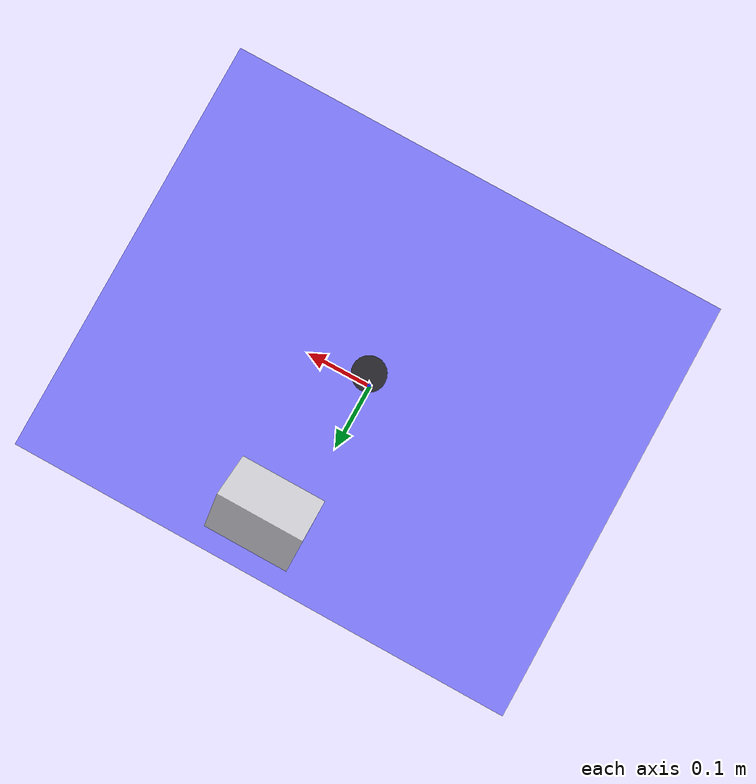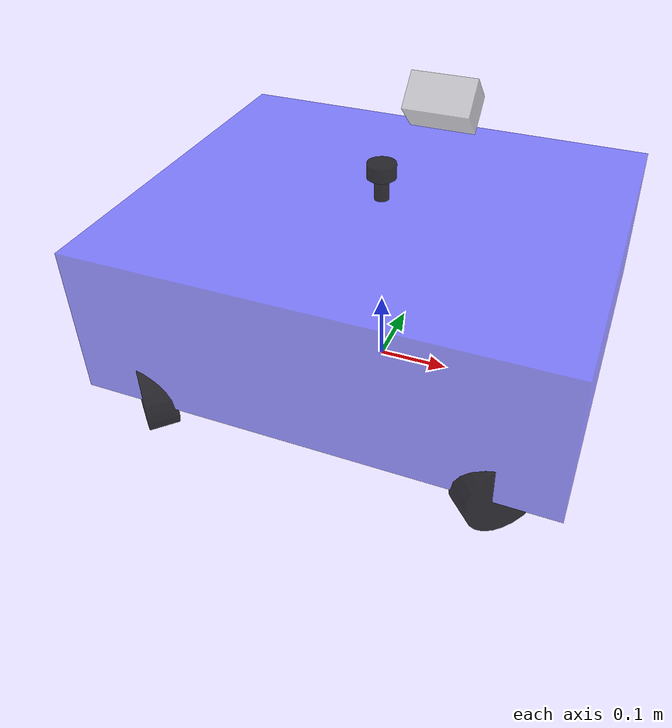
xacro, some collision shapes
<?xml version="1.0"?>
<robot xmlns:xacro="http://www.ros.org/wiki/xacro" name="bngu_sentinel">
    <xacro:arg name="cmd_vel_topic" default="cmd_vel" />
    <xacro:include filename="$(find rm_bnrobot_sim)/urdf/bngu_sentinel/base.urdf.xacro" />
    <!-- 传感器组件 -->
    <xacro:include filename="$(find rm_bnrobot_sim)/urdf/bngu_sentinel/sensor/imu.urdf.xacro" />
    <xacro:include filename="$(find rm_bnrobot_sim)/urdf/bngu_sentinel/sensor/laser.urdf.xacro" />
    <xacro:include filename="$(find rm_bnrobot_sim)/urdf/bngu_sentinel/sensor/camera.urdf.xacro" />
    <xacro:include filename="$(find rm_bnrobot_sim)/urdf/bngu_sentinel/sensor/mid360.urdf.xacro" />

     <!-- 执行器组件 -->
    <xacro:include filename="$(find rm_bnrobot_sim)/urdf/bngu_sentinel/actuator/wheel.urdf.xacro" />
    <xacro:include filename="$(find rm_bnrobot_sim)/urdf/bngu_sentinel/actuator/caster.urdf.xacro" />
    <xacro:include filename="$(find rm_bnrobot_sim)/urdf/bngu_sentinel/actuator/wheel_s.urdf.xacro" />

    <xacro:base_xacro length="0.633" width="0.526" height="0.21" />

    <!-- 传感器 -->
    <xacro:laser_xacro xyz="0 0 0.257" />
    <!-- Mid-360 FOV 原点：车体左侧 0.22157 m，无前向偏移；base_link 以地面为 z=0。
         雷达 x 轴向前，z 轴向左上方，沿用约 45 度倾角（roll=-0.7854）。 -->
    <xacro:mid360 name="mid360" topic="/livox/lidar">
        <origin xyz="0 0.22157 0.33018" rpy="-0.7854 0 0" />
    </xacro:mid360>

    <!-- 兼容 Livox 驱动的点云 frame id。 -->
    <link name="livox_frame" />
    <joint name="mid360_to_livox_frame" type="fixed">
        <parent link="mid360" />
        <child link="livox_frame" />
        <origin xyz="0 0 0" rpy="0 0 0" />
    </joint>

    <!-- Mid-360 内置 IMU；与实机 T_base_imu 及 FAST-LIO 配置一致。 -->
    <link name="livox_imu" />
    <joint name="base_to_livox_imu" type="fixed">
        <parent link="base_link" />
        <child link="livox_imu" />
        <origin xyz="0.011000000 0.206840878 0.282513959" rpy="-0.7854 0 0" />
    </joint>

    <!-- 麦克纳姆轮配置，保持原有轮距参数 -->

    <!-- 轮心高度等于轮子半径，避免出生时插入地面造成 IMU 长时间振荡。 -->
    <xacro:wheel_xacro wheel_name="front_left" xyz="0.235 -0.235 0.055" yaw="0.7854" axis="-1 1 0" />
    <xacro:wheel_xacro wheel_name="front_right" xyz="0.235 0.235 0.055" yaw="2.3562" axis="1 1 0" />
    <xacro:wheel_xacro wheel_name="rear_left" xyz="-0.235 -0.235 0.055" yaw="-0.7854" axis="-1 -1 0" />
    <xacro:wheel_xacro wheel_name="rear_right" xyz="-0.235 0.235 0.055" yaw="-2.3562" axis="1 -1 0" />

    <!-- Gazebo 插件 -->
    <xacro:include filename="$(find rm_bnrobot_sim)/urdf/bngu_sentinel/plugins/gazebo_control_plugin.xacro" />
    <xacro:gazebo_control_plugin /> <!-- 启用平面运动插件 -->
    <xacro:include filename="$(find rm_bnrobot_sim)/urdf/bngu_sentinel/bnbot.ros2_control.xacro" />
    <xacro:bngu_sentinel_ros2_control />
    <xacro:include filename="$(find rm_bnrobot_sim)/urdf/bngu_sentinel/plugins/gazebo_sensor_plugin.xacro" />
    <xacro:gazebo_sensor_plugin />
</robot>

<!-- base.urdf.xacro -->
<robot xmlns:xacro="http://www.ros.org/wiki/xacro">
    <xacro:include filename="$(find rm_bnrobot_sim)/urdf/bngu_sentinel/common_inertia.xacro" />

    <!-- base_link 直接以地面为 z=0，与实机 TF 定义一致。 -->
    <xacro:macro name="base_xacro" params="length width height">
        <link name="base_link">
            <visual>
                <origin xyz="0 0 ${height/2.0+0.055}" rpy="0 0 0" />
                <geometry>
                    <box size="${length} ${width} ${height}" />
                </geometry>
                <material name="blue">
                    <color rgba="0.1 0.1 1.0 0.5"/>
                </material>
            </visual>

            <!-- 碰撞：与视觉尺寸一致 -->
            <collision>
                <origin xyz="0 0 ${height/2.0+0.055}" rpy="0 0 0" />
                <geometry>
                    <box size="${length} ${width} ${height}" />
                </geometry>
                <material name="blue">
                    <color rgba="0.1 0.1 1.0 0.5"/>
                </material>
            </collision>
            <inertial>
                <origin xyz="0 0 ${height/2.0+0.055}" rpy="0 0 0" />
                <mass value="1.0" />
                <inertia ixx="${(1.0/12.0) * (width*width + height*height)}" ixy="0.0" ixz="0.0"
                         iyy="${(1.0/12.0) * (length*length + height*height)}" iyz="0.0"
                         izz="${(1.0/12.0) * (length*length + width*width)}" />
            </inertial>
        </link>
    </xacro:macro>
</robot>

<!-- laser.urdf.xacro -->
<robot xmlns:xacro="http://www.ros.org/wiki/xacro">
   <xacro:include filename="$(find rm_bnrobot_sim)/urdf/bngu_sentinel/common_inertia.xacro" />
    <xacro:macro name="laser_xacro" params="xyz">
        <gazebo reference="laser_cylinder_link">
            <material>Gazebo/Black</material>
        </gazebo>
        <gazebo reference="laser_link">
            <material>Gazebo/Black</material>
        </gazebo>

        <!-- ============雷达支撑杆================ -->
        <link name="laser_cylinder_link">
            <visual>
                <origin xyz="0 0 0" rpy="0 0 0" />
                <geometry>
                    <cylinder length="0.10" radius="0.01" />
                </geometry>
                <material name="black">
                    <color rgba="0.0 0.0 0.0 0.8" />
                </material>
            </visual>
            <collision>
                <origin xyz="0 0 0" rpy="0 0 0" />
                <geometry>
                    <cylinder length="0.10" radius="0.01" />
                </geometry>
                <material name="black">
                    <color rgba="0.0 0.0 0.0 0.8" />
                </material>
            </collision>
            <xacro:cylinder_inertia m="0.01" r="0.01" h="0.10" />
        </link>

        <joint name="laser_cylinder_joint" type="fixed">
            <parent link="base_link" />
            <child link="laser_cylinder_link" />
            <origin xyz="${xyz}" />
        </joint>
        <!-- ============雷达================ -->
        <link name="laser_link">
            <visual>
                <origin xyz="0 0 0" rpy="0 0 0" />
                <geometry>
                    <cylinder length="0.02" radius="0.02" />
                </geometry>
                <material name="black">
                    <color rgba="0.0 0.0 0.0 0.8" />
                </material>
            </visual>
            <collision>
                <origin xyz="0 0 0" rpy="0 0 0" />
                <geometry>
                    <cylinder length="0.02" radius="0.02" />
                </geometry>
                <material name="black">
                    <color rgba="0.0 0.0 0.0 0.8" />
                </material>
            </collision>
            <xacro:cylinder_inertia m="0.03" r="0.02" h="0.02" />
        </link>

        <joint name="laser_joint" type="fixed">
            <parent link="laser_cylinder_link" />
            <child link="laser_link" />
            <origin xyz="0 0 0.05" />
        </joint>

    </xacro:macro>

</robot>

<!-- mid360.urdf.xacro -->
<robot xmlns:xacro="http://www.ros.org/wiki/xacro">

  <xacro:property name="M_PI" value="3.1415926"/>
  <!-- 雷达物理参数 -->
  <xacro:property name="mid360_mass" value="0.4" />
  <xacro:property name="mid360_length" value="0.1" />
  <xacro:property name="mid360_width" value="0.06" />
  <xacro:property name="mid360_height" value="0.06" />

  <!-- 激光雷达性能参数（匹配硬件规格） -->
  <xacro:property name="laser_min_range" value="0.1" /> <!-- 最小探测距离（m） -->
  <xacro:property name="laser_max_range" value="200.0" /> <!-- 最大探测距离（m） -->
  <xacro:property name="laser_update_rate" value="10" /> <!-- 与实机驱动默认 publish_freq=10 Hz 一致。 -->
  <!-- Gazebo ray casting is much heavier than the real sensor. This density
       preserves the Mid-360 scan pattern while keeping the GUI responsive. -->
  <xacro:property name="horizontal_samples" value="150" />
  <xacro:property name="vertical_samples" value="32" />
  <xacro:property name="horizontal_min_angle" value="0" /> <!-- 水平最小角度（弧度） -->
  <xacro:property name="horizontal_max_angle" value="${2*M_PI}" /> <!-- 水平最大角度（360°） -->
  <xacro:property name="vertical_min_angle" value="${-7.22/180*M_PI}" /> <!-- 垂直最小角度（-7.22°） -->
  <xacro:property name="vertical_max_angle" value="${55.22/180*M_PI}" /> <!-- 垂直最大角度（55.22°） -->
  <xacro:property name="laser_resolution" value="0.002" /> <!-- 距离分辨率（m） -->
  <xacro:property name="noise_mean" value="0.0" /> <!-- 噪声均值 -->
  <xacro:property name="noise_stddev" value="0.002" /> <!-- 噪声标准差 -->
  <xacro:property name="downsample_rate" value="8" /> <!-- 每 20000 个扫描位置保留 2500 条射线，避免只截取短段垂直扫描。 -->

  <!-- 2. 雷达模型-->
  <xacro:macro name="mid360" params="name:='mid360' parent:='base_link' topic:='/livox/lidar' *origin">
    <link name="${name}">
      <visual>
        <!-- 雷达自身坐标系到link的偏移-->
        <origin xyz="0.025 -0.0265 -0.025" rpy="${M_PI/2} 0 ${M_PI}"/>
        <geometry>
          <mesh filename="file://$(find rm_bnrobot_sim)/meshes/mid360.stl" scale="0.0008 0.0008 0.0008"/>
        </geometry>
        <material name="black">
          <color rgba="0.8 0.8 0.8 0.8"/>
        </material>
      </visual>

      <collision>
        <origin xyz="0.025 -0.0265 -0.025" rpy="${M_PI/2} 0 ${M_PI}"/>
        <geometry>
          <box size="${mid360_length} ${mid360_width} ${mid360_height}"/>
        </geometry>
      </collision>

      <!-- 惯性参数 -->
      <xacro:box_inertia
        m="${mid360_mass}"
        w="${mid360_length}"
        h="${mid360_width}"
        d="${mid360_height}"/>
    </link>

    <joint name="${name}_joint" type="fixed">
      <parent link="${parent}"/>
      <child link="${name}"/>
      <xacro:insert_block name="origin"/>
    </joint>

    <!-- 5. Gazebo传感器插件配置 -->
    <gazebo reference="${name}">
      <sensor type="ray" name="${name}">
        <pose>0.0 0.0 0.0 0 0</pose><!-- 传感器自身在link中的姿态（无偏移） -->
        <always_on>true</always_on>
        <!-- Thousands of rendered rays can make gzclient consume several GB. -->
        <visualize>false</visualize>
        <update_rate>${laser_update_rate}</update_rate> <!-- 刷新频率 -->

        <!-- 6. Livox雷达插件（发布点云数据） -->
        <plugin name="${name}_plugin" filename="libros2_livox.so">
          <simulate>true</simulate>
          <frame_name>livox_frame</frame_name>

          <ray>
            <scan>
              <!-- 水平扫描参数 -->
              <horizontal>
                <samples>${horizontal_samples}</samples>
                <resolution>1</resolution>
                <min_angle>${horizontal_min_angle}</min_angle>
                <max_angle>${horizontal_max_angle}</max_angle>
              </horizontal>
              <!-- 垂直扫描参数 -->
              <vertical>
                <samples>${vertical_samples}</samples>
                <resolution>1</resolution>
                <min_angle>${vertical_min_angle}</min_angle>
                <max_angle>${vertical_max_angle}</max_angle>
              </vertical>
            </scan>
            <!-- 距离参数 -->
            <range>
              <min>${laser_min_range}</min>
              <max>${laser_max_range}</max>
              <resolution>${laser_resolution}</resolution>
            </range>
            <!-- 噪声参数 -->
            <noise>
              <type>gaussian</type>
              <mean>${noise_mean}</mean>
              <stddev>${noise_stddev}</stddev>
            </noise>
          </ray>

          <visualize>false</visualize> <!-- 点云可视化由RViz负责，Gazebo中关闭 -->
          <!-- Advance a complete 0.1 s pattern interval, retaining about the same
               ray count as before (2500 instead of 2400). -->
          <samples>20000</samples>
          <downsample>${downsample_rate}</downsample> <!-- 降采样 -->
          <csv_file_name>$(find rm_bnrobot_sim)/scan_mode/mid360.csv</csv_file_name>
          <topic>${topic}</topic> <!-- 点云发布话题 -->
        </plugin>
      </sensor>
    </gazebo>
  </xacro:macro>
</robot>

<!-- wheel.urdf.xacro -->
<robot xmlns:xacro="http://www.ros.org/wiki/xacro">
   <xacro:include filename="$(find rm_bnrobot_sim)/urdf/bngu_sentinel/common_inertia.xacro" />

    <xacro:macro name="wheel_xacro" params="wheel_name xyz yaw axis">
        <link name="${wheel_name}_wheel_link">
            <visual>
                <origin xyz="0 0 0" rpy="1.57079 0 ${yaw}" />
                <geometry>
                    <cylinder length="0.04" radius="0.055" />
                </geometry>
                <material name="black">
                    <color rgba="0.0 0.0 0.0 0.8"/>
                </material>
            </visual>

            <collision>
                <origin xyz="0 0 0" rpy="1.57079 0 ${yaw}" />
                <geometry>
                    <cylinder length="0.04" radius="0.055" />
                </geometry>
            </collision>

            <xacro:cylinder_inertia m="0.6" h="0.04" r="0.055"/>
        </link>

        <!-- Gazebo物理参数 -->
        <gazebo reference="${wheel_name}_wheel_link">
            <!-- 摩擦系数：mu1=横向（辊子方向），mu2=纵向（轴线方向） -->
            <mu1 value="1.0" />
            <mu2 value="1.0" />

            <!-- 接触刚度/阻尼 -->
            <kp value="30000.0" />
            <kd value="15.0" />

            <!-- 滚动摩擦 -->
            <rolling_friction value="0.001" />
            <slip1 value="0.005" />
            <slip2 value="0.005" />

            <material>Gazebo/Black</material>
        </gazebo>

        <!-- 关节定义 -->
        <joint name="${wheel_name}_wheel_joint" type="continuous">
            <parent link="base_link" />
            <child link="${wheel_name}_wheel_link" />
            <origin xyz="${xyz}" />
            <axis xyz="${axis}" />

            <!-- 动力学参数-->
            <dynamics damping="0.8" friction="0.05" />

            <limit effort="100" velocity="100" />
            <calibration rising="0.0" />
        </joint>
    </xacro:macro>
</robot>
